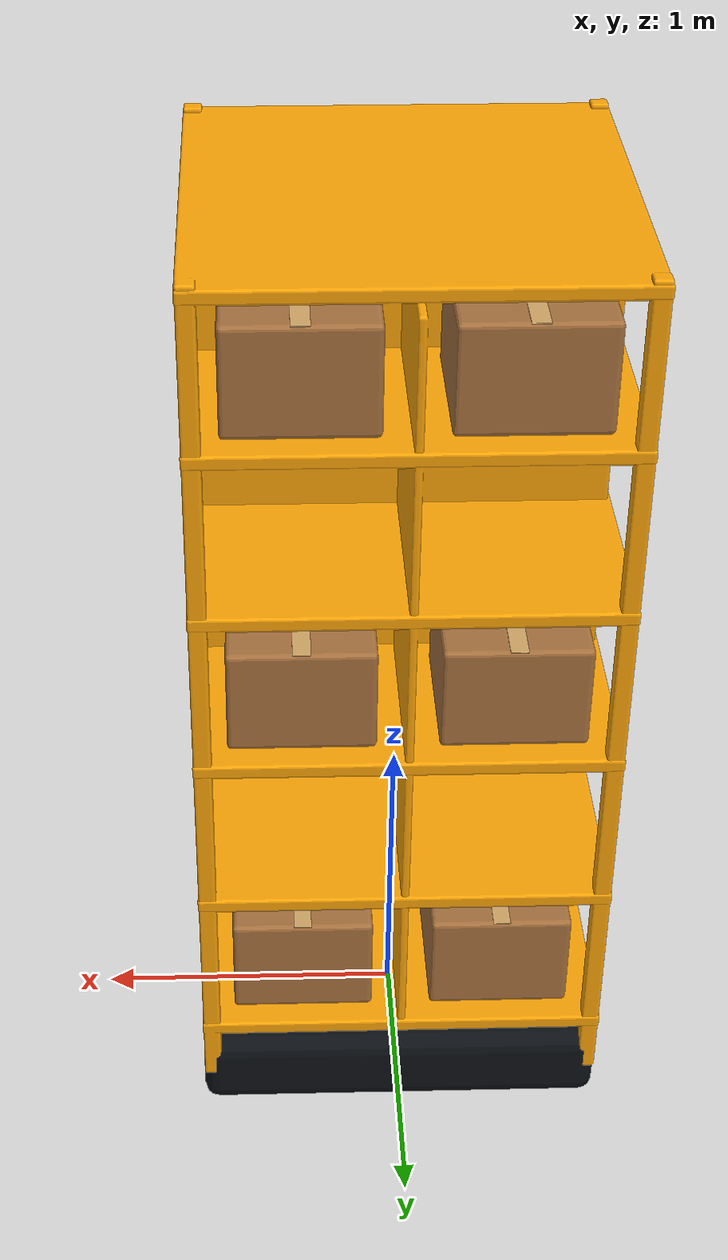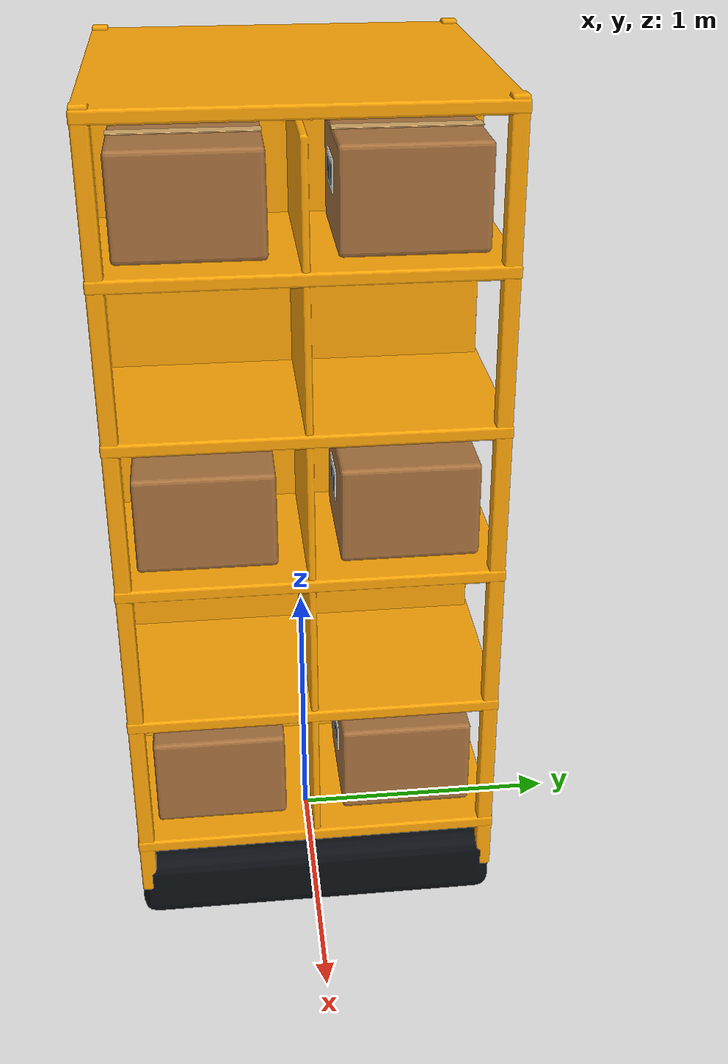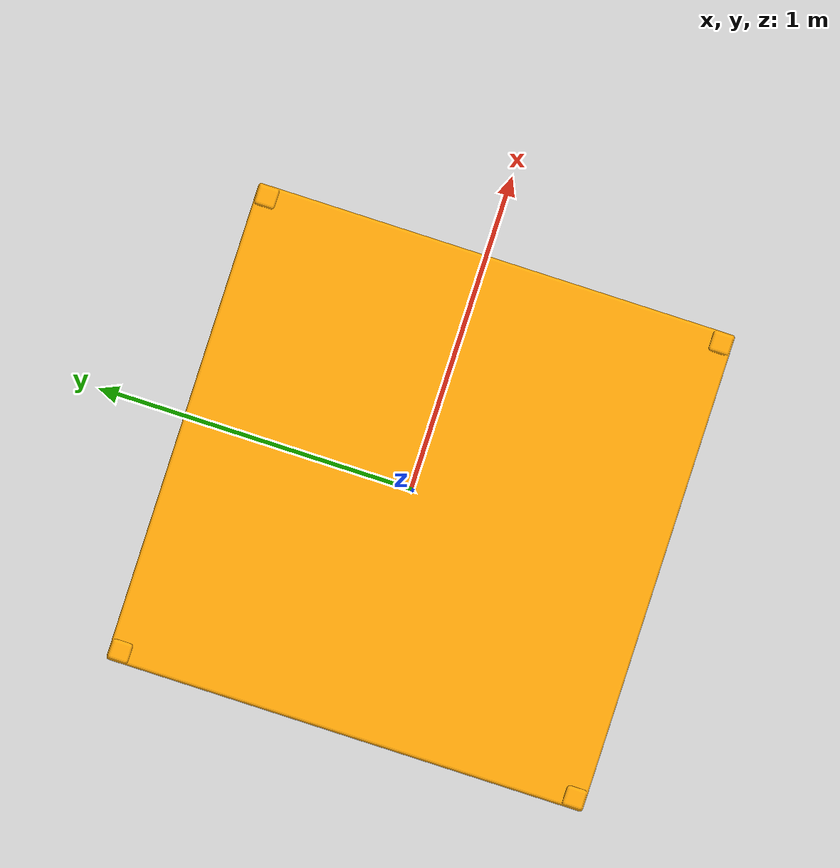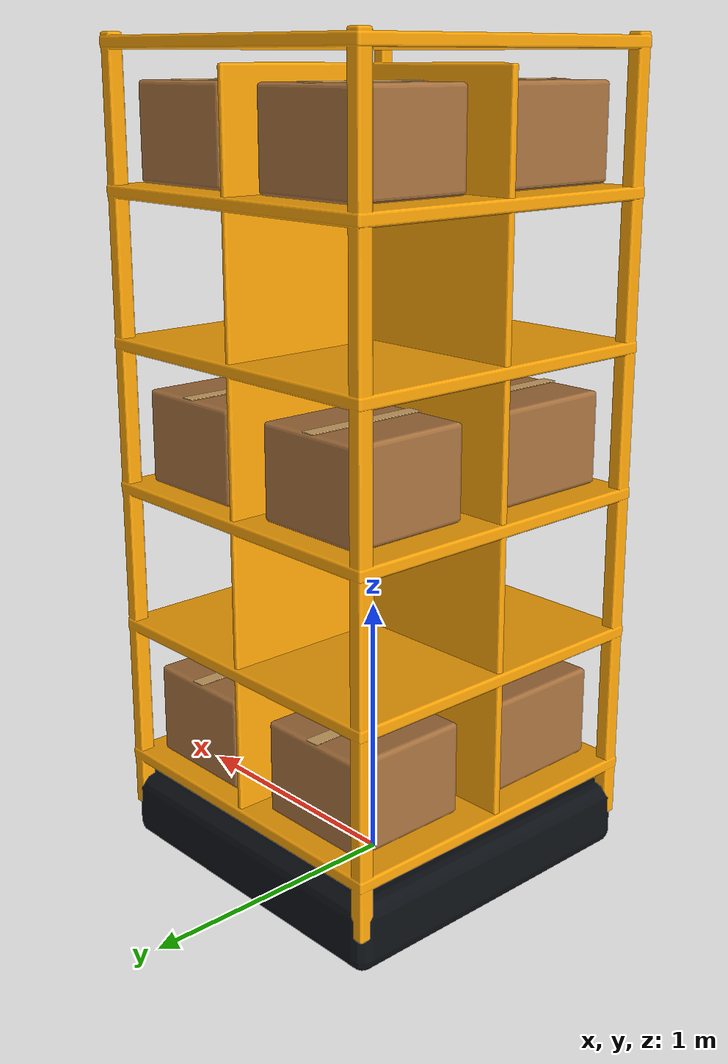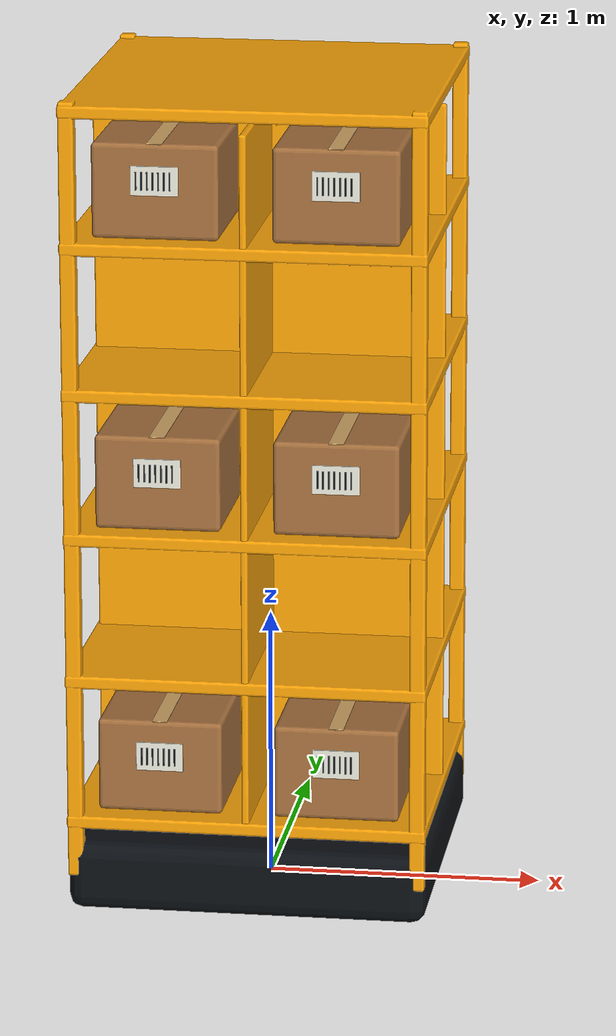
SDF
<?xml version='1.0' encoding='utf-8'?>
<sdf version="1.10">
  <model name="inventory_pod">
    <static>true</static>
    <link name="body">
      <collision name="envelope">
        <pose>0 0 1.525 0 0 0</pose>
        <geometry>
          <box>
            <size>1.4 1.4 3.05</size>
          </box>
        </geometry>
      </collision>
      <visual name="dark">
        <geometry>
          <mesh>
            <uri>model://inventory_pod/meshes/dark.obj</uri>
          </mesh>
        </geometry>
        <material>
          <diffuse>0.045 0.06 0.077 1</diffuse>
          <ambient>0.0315 0.041999999999999996 0.053899999999999997 1</ambient>
          <specular>0.1 0.1 0.1 1</specular>
        </material>
      </visual>
      <visual name="yellow">
        <geometry>
          <mesh>
            <uri>model://inventory_pod/meshes/yellow.obj</uri>
          </mesh>
        </geometry>
        <material>
          <diffuse>0.98 0.64 0.025 1</diffuse>
          <ambient>0.6859999999999999 0.44799999999999995 0.017499999999999998 1</ambient>
          <specular>0.1 0.1 0.1 1</specular>
        </material>
      </visual>
      <visual name="cardboard">
        <geometry>
          <mesh>
            <uri>model://inventory_pod/meshes/cardboard.obj</uri>
          </mesh>
        </geometry>
        <material>
          <diffuse>0.65 0.44 0.24 1</diffuse>
          <ambient>0.45499999999999996 0.308 0.16799999999999998 1</ambient>
          <specular>0.1 0.1 0.1 1</specular>
        </material>
      </visual>
      <visual name="tape">
        <geometry>
          <mesh>
            <uri>model://inventory_pod/meshes/tape.obj</uri>
          </mesh>
        </geometry>
        <material>
          <diffuse>0.82 0.65 0.4 1</diffuse>
          <ambient>0.574 0.45499999999999996 0.27999999999999997 1</ambient>
          <specular>0.1 0.1 0.1 1</specular>
        </material>
      </visual>
      <visual name="label">
        <geometry>
          <mesh>
            <uri>model://inventory_pod/meshes/label.obj</uri>
          </mesh>
        </geometry>
        <material>
          <diffuse>0.92 0.92 0.87 1</diffuse>
          <ambient>0.644 0.644 0.609 1</ambient>
          <specular>0.1 0.1 0.1 1</specular>
        </material>
      </visual>
    </link>
  </model>
</sdf>
